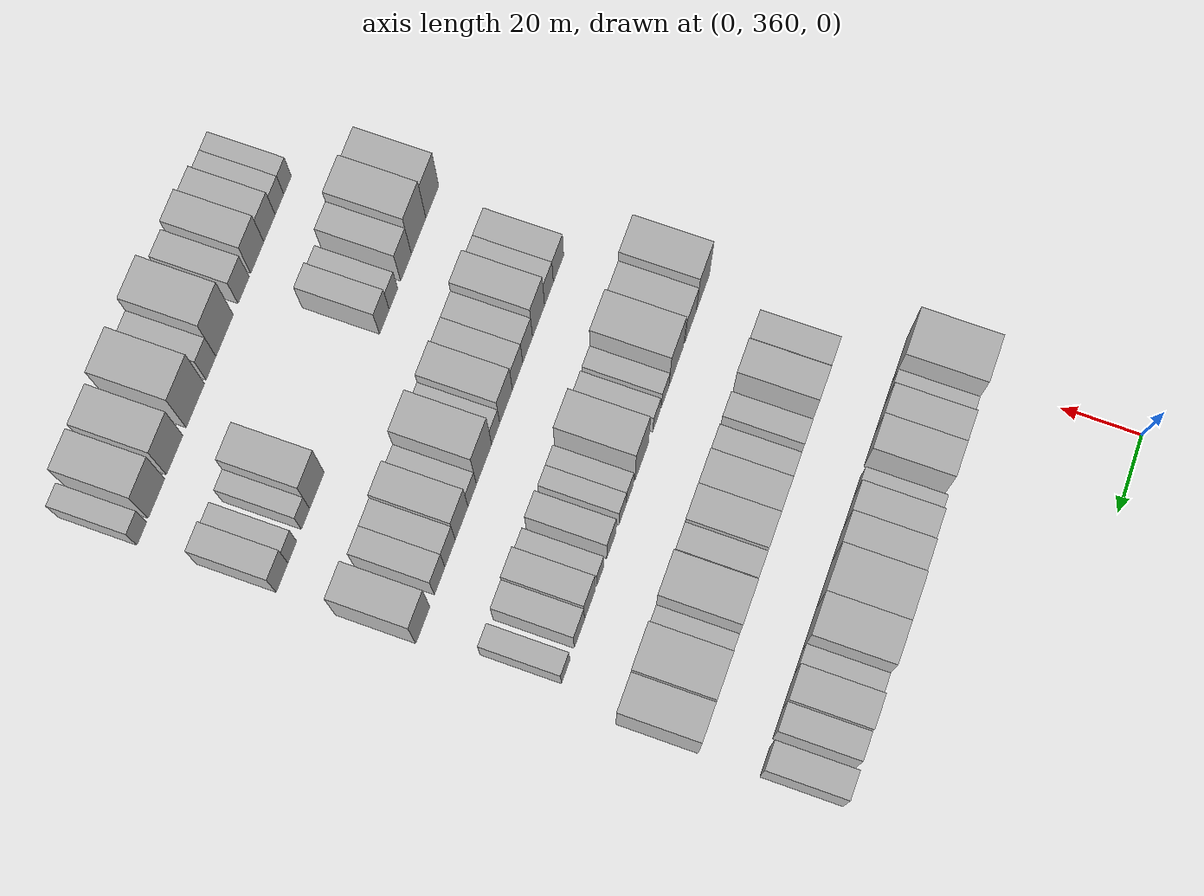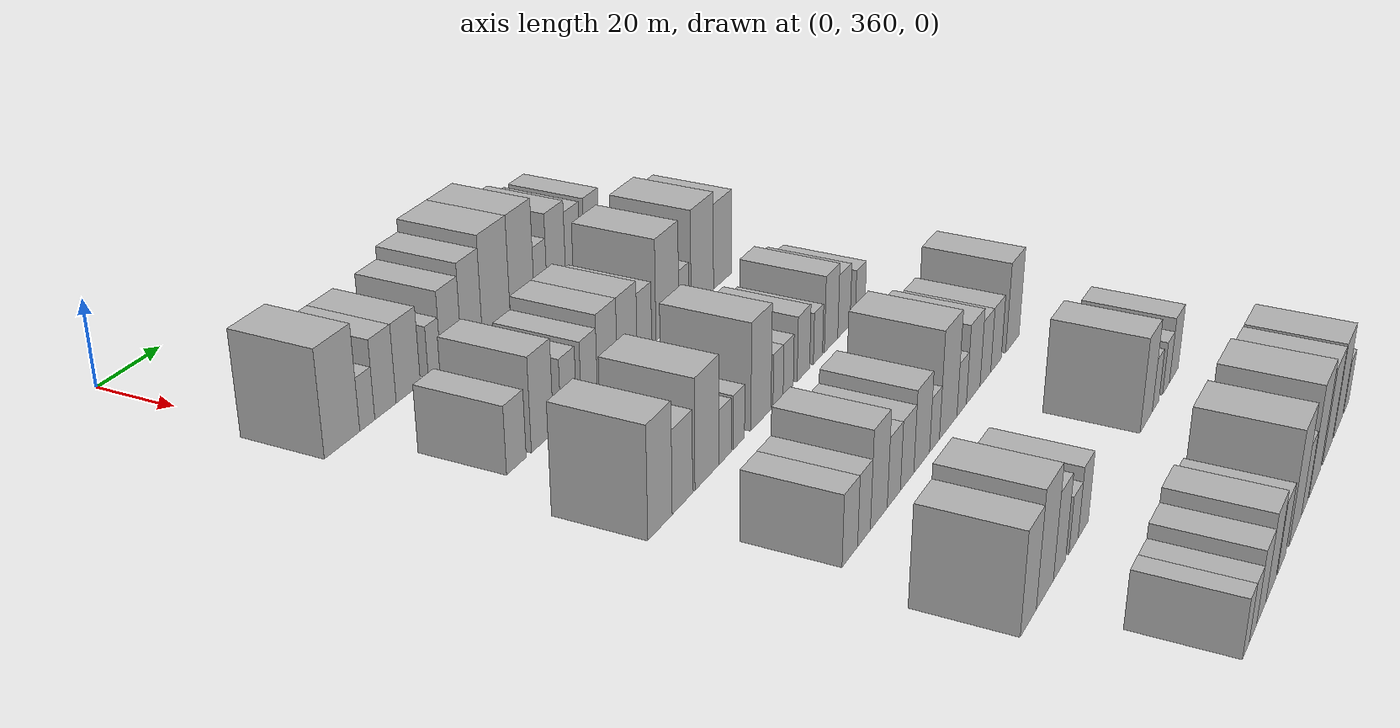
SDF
<sdf version="1.6">
 <world name="default">
  <model name="building_102">
   <static>1</static>
   <pose>50.0000 361.6857 0 0.000000 0.000000 0.000000</pose>
   <link name="link">
    <pose>0 0 12.00 0 0 0</pose>
    <collision name="collision"><geometry><box><size>20.0000 11.9867 24.0000</size></box></geometry></collision>
    <visual name="visual">
     <cast_shadows>0</cast_shadows>
     <geometry><box><size>20.0000 11.9867 24.0000</size></box></geometry>
     <material>
      <script>
       <uri>model://HANNAS_wall/materials/scripts</uri>
       <uri>model://HANNAS_wall/materials/textures</uri>
       <name>vrc/HANNAS_wall</name>
      </script>
     </material>
    </visual>
   </link>
  </model>
  <model name="building_103">
   <static>1</static>
   <pose>50.0000 370.3186 0 0.000000 0.000000 0.000000</pose>
   <link name="link">
    <pose>0 0 6.00 0 0 0</pose>
    <collision name="collision"><geometry><box><size>20.0000 5.2791 12.0000</size></box></geometry></collision>
    <visual name="visual">
     <cast_shadows>0</cast_shadows>
     <geometry><box><size>20.0000 5.2791 12.0000</size></box></geometry>
     <material>
      <script>
       <uri>model://HANNAS_wall/materials/scripts</uri>
       <uri>model://HANNAS_wall/materials/textures</uri>
       <name>vrc/HANNAS_wall</name>
      </script>
     </material>
    </visual>
   </link>
  </model>
  <model name="building_104">
   <static>1</static>
   <pose>50.0000 376.7874 0 0.000000 0.000000 0.000000</pose>
   <link name="link">
    <pose>0 0 9.00 0 0 0</pose>
    <collision name="collision"><geometry><box><size>20.0000 7.6583 18.0000</size></box></geometry></collision>
    <visual name="visual">
     <cast_shadows>0</cast_shadows>
     <geometry><box><size>20.0000 7.6583 18.0000</size></box></geometry>
     <material>
      <script>
       <uri>model://HANNAS_wall/materials/scripts</uri>
       <uri>model://HANNAS_wall/materials/textures</uri>
       <name>vrc/HANNAS_wall</name>
      </script>
     </material>
    </visual>
   </link>
  </model>
  <model name="building_105">
   <static>1</static>
   <pose>50.0000 385.1121 0 0.000000 0.000000 0.000000</pose>
   <link name="link">
    <pose>0 0 9.00 0 0 0</pose>
    <collision name="collision"><geometry><box><size>20.0000 8.9912 18.0000</size></box></geometry></collision>
    <visual name="visual">
     <cast_shadows>0</cast_shadows>
     <geometry><box><size>20.0000 8.9912 18.0000</size></box></geometry>
     <material>
      <script>
       <uri>model://HANNAS_wall/materials/scripts</uri>
       <uri>model://HANNAS_wall/materials/textures</uri>
       <name>vrc/HANNAS_wall</name>
      </script>
     </material>
    </visual>
   </link>
  </model>
  <model name="building_106">
   <static>1</static>
   <pose>50.0000 395.0356 0 0.000000 0.000000 0.000000</pose>
   <link name="link">
    <pose>0 0 6.00 0 0 0</pose>
    <collision name="collision"><geometry><box><size>20.0000 4.8556 12.0000</size></box></geometry></collision>
    <visual name="visual">
     <cast_shadows>0</cast_shadows>
     <geometry><box><size>20.0000 4.8556 12.0000</size></box></geometry>
     <material>
      <script>
       <uri>model://HANNAS_wall/materials/scripts</uri>
       <uri>model://HANNAS_wall/materials/textures</uri>
       <name>vrc/HANNAS_wall</name>
      </script>
     </material>
    </visual>
   </link>
  </model>
  <model name="building_107">
   <static>1</static>
   <pose>50.0000 401.5253 0 0.000000 0.000000 0.000000</pose>
   <link name="link">
    <pose>0 0 9.00 0 0 0</pose>
    <collision name="collision"><geometry><box><size>20.0000 8.1240 18.0000</size></box></geometry></collision>
    <visual name="visual">
     <cast_shadows>0</cast_shadows>
     <geometry><box><size>20.0000 8.1240 18.0000</size></box></geometry>
     <material>
      <script>
       <uri>model://HANNAS_wall/materials/scripts</uri>
       <uri>model://HANNAS_wall/materials/textures</uri>
       <name>vrc/HANNAS_wall</name>
      </script>
     </material>
    </visual>
   </link>
  </model>
  <model name="building_108">
   <static>1</static>
   <pose>50.0000 409.8244 0 0.000000 0.000000 0.000000</pose>
   <link name="link">
    <pose>0 0 10.50 0 0 0</pose>
    <collision name="collision"><geometry><box><size>20.0000 8.4741 21.0000</size></box></geometry></collision>
    <visual name="visual">
     <cast_shadows>0</cast_shadows>
     <geometry><box><size>20.0000 8.4741 21.0000</size></box></geometry>
     <material>
      <script>
       <uri>model://HANNAS_wall/materials/scripts</uri>
       <uri>model://HANNAS_wall/materials/textures</uri>
       <name>vrc/HANNAS_wall</name>
      </script>
     </material>
    </visual>
   </link>
  </model>
  <model name="building_109">
   <static>1</static>
   <pose>50.0000 419.9317 0 0.000000 0.000000 0.000000</pose>
   <link name="link">
    <pose>0 0 12.00 0 0 0</pose>
    <collision name="collision"><geometry><box><size>20.0000 11.7406 24.0000</size></box></geometry></collision>
    <visual name="visual">
     <cast_shadows>0</cast_shadows>
     <geometry><box><size>20.0000 11.7406 24.0000</size></box></geometry>
     <material>
      <script>
       <uri>model://HANNAS_wall/materials/scripts</uri>
       <uri>model://HANNAS_wall/materials/textures</uri>
       <name>vrc/HANNAS_wall</name>
      </script>
     </material>
    </visual>
   </link>
  </model>
  <model name="building_110">
   <static>1</static>
   <pose>50.0000 431.1006 0 0.000000 0.000000 0.000000</pose>
   <link name="link">
    <pose>0 0 12.00 0 0 0</pose>
    <collision name="collision"><geometry><box><size>20.0000 10.5972 24.0000</size></box></geometry></collision>
    <visual name="visual">
     <cast_shadows>0</cast_shadows>
     <geometry><box><size>20.0000 10.5972 24.0000</size></box></geometry>
     <material>
      <script>
       <uri>model://HANNAS_wall/materials/scripts</uri>
       <uri>model://HANNAS_wall/materials/textures</uri>
       <name>vrc/HANNAS_wall</name>
      </script>
     </material>
    </visual>
   </link>
  </model>
  <model name="building_111">
   <static>1</static>
   <pose>50.0000 439.2629 0 0.000000 0.000000 0.000000</pose>
   <link name="link">
    <pose>0 0 6.00 0 0 0</pose>
    <collision name="collision"><geometry><box><size>20.0000 5.7275 12.0000</size></box></geometry></collision>
    <visual name="visual">
     <cast_shadows>0</cast_shadows>
     <geometry><box><size>20.0000 5.7275 12.0000</size></box></geometry>
     <material>
      <script>
       <uri>model://HANNAS_wall/materials/scripts</uri>
       <uri>model://HANNAS_wall/materials/textures</uri>
       <name>vrc/HANNAS_wall</name>
      </script>
     </material>
    </visual>
   </link>
  </model>
  <model name="building_112">
   <static>1</static>
   <pose>50.0000 446.4455 0 0.000000 0.000000 0.000000</pose>
   <link name="link">
    <pose>0 0 9.00 0 0 0</pose>
    <collision name="collision"><geometry><box><size>20.0000 8.6378 18.0000</size></box></geometry></collision>
    <visual name="visual">
     <cast_shadows>0</cast_shadows>
     <geometry><box><size>20.0000 8.6378 18.0000</size></box></geometry>
     <material>
      <script>
       <uri>model://HANNAS_wall/materials/scripts</uri>
       <uri>model://HANNAS_wall/materials/textures</uri>
       <name>vrc/HANNAS_wall</name>
      </script>
     </material>
    </visual>
   </link>
  </model>
  <model name="building_113">
   <static>1</static>
   <pose>50.0000 454.3090 0 0.000000 0.000000 0.000000</pose>
   <link name="link">
    <pose>0 0 7.50 0 0 0</pose>
    <collision name="collision"><geometry><box><size>20.0000 7.0892 15.0000</size></box></geometry></collision>
    <visual name="visual">
     <cast_shadows>0</cast_shadows>
     <geometry><box><size>20.0000 7.0892 15.0000</size></box></geometry>
     <material>
      <script>
       <uri>model://HANNAS_wall/materials/scripts</uri>
       <uri>model://HANNAS_wall/materials/textures</uri>
       <name>vrc/HANNAS_wall</name>
      </script>
     </material>
    </visual>
   </link>
  </model>
  <model name="building_114">
   <static>1</static>
   <pose>50.0000 463.4557 0 0.000000 0.000000 0.000000</pose>
   <link name="link">
    <pose>0 0 7.50 0 0 0</pose>
    <collision name="collision"><geometry><box><size>20.0000 7.2040 15.0000</size></box></geometry></collision>
    <visual name="visual">
     <cast_shadows>0</cast_shadows>
     <geometry><box><size>20.0000 7.2040 15.0000</size></box></geometry>
     <material>
      <script>
       <uri>model://HANNAS_wall/materials/scripts</uri>
       <uri>model://HANNAS_wall/materials/textures</uri>
       <name>vrc/HANNAS_wall</name>
      </script>
     </material>
    </visual>
   </link>
  </model>
  <model name="building_235">
   <static>1</static>
   <pose>85.0000 369.3578 0 0.000000 0.000000 0.000000</pose>
   <link name="link">
    <pose>0 0 7.50 0 0 0</pose>
    <collision name="collision"><geometry><box><size>20.0000 7.3930 15.0000</size></box></geometry></collision>
    <visual name="visual">
     <cast_shadows>0</cast_shadows>
     <geometry><box><size>20.0000 7.3930 15.0000</size></box></geometry>
     <material>
      <script>
       <uri>model://HANNAS_wall/materials/scripts</uri>
       <uri>model://HANNAS_wall/materials/textures</uri>
       <name>vrc/HANNAS_wall</name>
      </script>
     </material>
    </visual>
   </link>
  </model>
  <model name="building_236">
   <static>1</static>
   <pose>85.0000 379.4162 0 0.000000 0.000000 0.000000</pose>
   <link name="link">
    <pose>0 0 10.50 0 0 0</pose>
    <collision name="collision"><geometry><box><size>20.0000 8.7239 21.0000</size></box></geometry></collision>
    <visual name="visual">
     <cast_shadows>0</cast_shadows>
     <geometry><box><size>20.0000 8.7239 21.0000</size></box></geometry>
     <material>
      <script>
       <uri>model://HANNAS_wall/materials/scripts</uri>
       <uri>model://HANNAS_wall/materials/textures</uri>
       <name>vrc/HANNAS_wall</name>
      </script>
     </material>
    </visual>
   </link>
  </model>
  <model name="building_237">
   <static>1</static>
   <pose>85.0000 389.9476 0 0.000000 0.000000 0.000000</pose>
   <link name="link">
    <pose>0 0 7.50 0 0 0</pose>
    <collision name="collision"><geometry><box><size>20.0000 6.3389 15.0000</size></box></geometry></collision>
    <visual name="visual">
     <cast_shadows>0</cast_shadows>
     <geometry><box><size>20.0000 6.3389 15.0000</size></box></geometry>
     <material>
      <script>
       <uri>model://HANNAS_wall/materials/scripts</uri>
       <uri>model://HANNAS_wall/materials/textures</uri>
       <name>vrc/HANNAS_wall</name>
      </script>
     </material>
    </visual>
   </link>
  </model>
  <model name="building_238">
   <static>1</static>
   <pose>85.0000 398.5433 0 0.000000 0.000000 0.000000</pose>
   <link name="link">
    <pose>0 0 7.50 0 0 0</pose>
    <collision name="collision"><geometry><box><size>20.0000 6.8524 15.0000</size></box></geometry></collision>
    <visual name="visual">
     <cast_shadows>0</cast_shadows>
     <geometry><box><size>20.0000 6.8524 15.0000</size></box></geometry>
     <material>
      <script>
       <uri>model://HANNAS_wall/materials/scripts</uri>
       <uri>model://HANNAS_wall/materials/textures</uri>
       <name>vrc/HANNAS_wall</name>
      </script>
     </material>
    </visual>
   </link>
  </model>
  <model name="building_239">
   <static>1</static>
   <pose>85.0000 406.3175 0 0.000000 0.000000 0.000000</pose>
   <link name="link">
    <pose>0 0 9.00 0 0 0</pose>
    <collision name="collision"><geometry><box><size>20.0000 8.6960 18.0000</size></box></geometry></collision>
    <visual name="visual">
     <cast_shadows>0</cast_shadows>
     <geometry><box><size>20.0000 8.6960 18.0000</size></box></geometry>
     <material>
      <script>
       <uri>model://HANNAS_wall/materials/scripts</uri>
       <uri>model://HANNAS_wall/materials/textures</uri>
       <name>vrc/HANNAS_wall</name>
      </script>
     </material>
    </visual>
   </link>
  </model>
  <model name="building_240">
   <static>1</static>
   <pose>85.0000 415.1544 0 0.000000 0.000000 0.000000</pose>
   <link name="link">
    <pose>0 0 9.00 0 0 0</pose>
    <collision name="collision"><geometry><box><size>20.0000 8.9778 18.0000</size></box></geometry></collision>
    <visual name="visual">
     <cast_shadows>0</cast_shadows>
     <geometry><box><size>20.0000 8.9778 18.0000</size></box></geometry>
     <material>
      <script>
       <uri>model://HANNAS_wall/materials/scripts</uri>
       <uri>model://HANNAS_wall/materials/textures</uri>
       <name>vrc/HANNAS_wall</name>
      </script>
     </material>
    </visual>
   </link>
  </model>
  <model name="building_241">
   <static>1</static>
   <pose>85.0000 423.0074 0 0.000000 0.000000 0.000000</pose>
   <link name="link">
    <pose>0 0 7.50 0 0 0</pose>
    <collision name="collision"><geometry><box><size>20.0000 6.7283 15.0000</size></box></geometry></collision>
    <visual name="visual">
     <cast_shadows>0</cast_shadows>
     <geometry><box><size>20.0000 6.7283 15.0000</size></box></geometry>
     <material>
      <script>
       <uri>model://HANNAS_wall/materials/scripts</uri>
       <uri>model://HANNAS_wall/materials/textures</uri>
       <name>vrc/HANNAS_wall</name>
      </script>
     </material>
    </visual>
   </link>
  </model>
  <model name="building_242">
   <static>1</static>
   <pose>85.0000 433.8915 0 0.000000 0.000000 0.000000</pose>
   <link name="link">
    <pose>0 0 12.00 0 0 0</pose>
    <collision name="collision"><geometry><box><size>20.0000 11.0398 24.0000</size></box></geometry></collision>
    <visual name="visual">
     <cast_shadows>0</cast_shadows>
     <geometry><box><size>20.0000 11.0398 24.0000</size></box></geometry>
     <material>
      <script>
       <uri>model://HANNAS_wall/materials/scripts</uri>
       <uri>model://HANNAS_wall/materials/textures</uri>
       <name>vrc/HANNAS_wall</name>
      </script>
     </material>
    </visual>
   </link>
  </model>
  <model name="building_243">
   <static>1</static>
   <pose>85.0000 441.9706 0 0.000000 0.000000 0.000000</pose>
   <link name="link">
    <pose>0 0 6.00 0 0 0</pose>
    <collision name="collision"><geometry><box><size>20.0000 5.1183 12.0000</size></box></geometry></collision>
    <visual name="visual">
     <cast_shadows>0</cast_shadows>
     <geometry><box><size>20.0000 5.1183 12.0000</size></box></geometry>
     <material>
      <script>
       <uri>model://HANNAS_wall/materials/scripts</uri>
       <uri>model://HANNAS_wall/materials/textures</uri>
       <name>vrc/HANNAS_wall</name>
      </script>
     </material>
    </visual>
   </link>
  </model>
  <model name="building_244">
   <static>1</static>
   <pose>85.0000 451.3137 0 0.000000 0.000000 0.000000</pose>
   <link name="link">
    <pose>0 0 12.00 0 0 0</pose>
    <collision name="collision"><geometry><box><size>20.0000 11.5679 24.0000</size></box></geometry></collision>
    <visual name="visual">
     <cast_shadows>0</cast_shadows>
     <geometry><box><size>20.0000 11.5679 24.0000</size></box></geometry>
     <material>
      <script>
       <uri>model://HANNAS_wall/materials/scripts</uri>
       <uri>model://HANNAS_wall/materials/textures</uri>
       <name>vrc/HANNAS_wall</name>
      </script>
     </material>
    </visual>
   </link>
  </model>
  <model name="building_245">
   <static>1</static>
   <pose>85.0000 461.9260 0 0.000000 0.000000 0.000000</pose>
   <link name="link">
    <pose>0 0 10.50 0 0 0</pose>
    <collision name="collision"><geometry><box><size>20.0000 9.6566 21.0000</size></box></geometry></collision>
    <visual name="visual">
     <cast_shadows>0</cast_shadows>
     <geometry><box><size>20.0000 9.6566 21.0000</size></box></geometry>
     <material>
      <script>
       <uri>model://HANNAS_wall/materials/scripts</uri>
       <uri>model://HANNAS_wall/materials/textures</uri>
       <name>vrc/HANNAS_wall</name>
      </script>
     </material>
    </visual>
   </link>
  </model>
  <model name="building_355">
   <static>1</static>
   <pose>120.0000 361.5621 0 0.000000 0.000000 0.000000</pose>
   <link name="link">
    <pose>0 0 12.00 0 0 0</pose>
    <collision name="collision"><geometry><box><size>20.0000 9.8209 24.0000</size></box></geometry></collision>
    <visual name="visual">
     <cast_shadows>0</cast_shadows>
     <geometry><box><size>20.0000 9.8209 24.0000</size></box></geometry>
     <material>
      <script>
       <uri>model://HANNAS_wall/materials/scripts</uri>
       <uri>model://HANNAS_wall/materials/textures</uri>
       <name>vrc/HANNAS_wall</name>
      </script>
     </material>
    </visual>
   </link>
  </model>
  <model name="building_356">
   <static>1</static>
   <pose>120.0000 370.7505 0 0.000000 0.000000 0.000000</pose>
   <link name="link">
    <pose>0 0 9.00 0 0 0</pose>
    <collision name="collision"><geometry><box><size>20.0000 8.5560 18.0000</size></box></geometry></collision>
    <visual name="visual">
     <cast_shadows>0</cast_shadows>
     <geometry><box><size>20.0000 8.5560 18.0000</size></box></geometry>
     <material>
      <script>
       <uri>model://HANNAS_wall/materials/scripts</uri>
       <uri>model://HANNAS_wall/materials/textures</uri>
       <name>vrc/HANNAS_wall</name>
      </script>
     </material>
    </visual>
   </link>
  </model>
  <model name="building_357">
   <static>1</static>
   <pose>120.0000 381.3107 0 0.000000 0.000000 0.000000</pose>
   <link name="link">
    <pose>0 0 12.00 0 0 0</pose>
    <collision name="collision"><geometry><box><size>20.0000 10.5643 24.0000</size></box></geometry></collision>
    <visual name="visual">
     <cast_shadows>0</cast_shadows>
     <geometry><box><size>20.0000 10.5643 24.0000</size></box></geometry>
     <material>
      <script>
       <uri>model://HANNAS_wall/materials/scripts</uri>
       <uri>model://HANNAS_wall/materials/textures</uri>
       <name>vrc/HANNAS_wall</name>
      </script>
     </material>
    </visual>
   </link>
  </model>
  <model name="building_358">
   <static>1</static>
   <pose>120.0000 389.3244 0 0.000000 0.000000 0.000000</pose>
   <link name="link">
    <pose>0 0 6.00 0 0 0</pose>
    <collision name="collision"><geometry><box><size>20.0000 5.4633 12.0000</size></box></geometry></collision>
    <visual name="visual">
     <cast_shadows>0</cast_shadows>
     <geometry><box><size>20.0000 5.4633 12.0000</size></box></geometry>
     <material>
      <script>
       <uri>model://HANNAS_wall/materials/scripts</uri>
       <uri>model://HANNAS_wall/materials/textures</uri>
       <name>vrc/HANNAS_wall</name>
      </script>
     </material>
    </visual>
   </link>
  </model>
  <model name="building_359">
   <static>1</static>
   <pose>120.0000 395.6555 0 0.000000 0.000000 0.000000</pose>
   <link name="link">
    <pose>0 0 6.00 0 0 0</pose>
    <collision name="collision"><geometry><box><size>20.0000 5.1988 12.0000</size></box></geometry></collision>
    <visual name="visual">
     <cast_shadows>0</cast_shadows>
     <geometry><box><size>20.0000 5.1988 12.0000</size></box></geometry>
     <material>
      <script>
       <uri>model://HANNAS_wall/materials/scripts</uri>
       <uri>model://HANNAS_wall/materials/textures</uri>
       <name>vrc/HANNAS_wall</name>
      </script>
     </material>
    </visual>
   </link>
  </model>
  <model name="building_360">
   <static>1</static>
   <pose>120.0000 406.1426 0 0.000000 0.000000 0.000000</pose>
   <link name="link">
    <pose>0 0 12.00 0 0 0</pose>
    <collision name="collision"><geometry><box><size>20.0000 9.7755 24.0000</size></box></geometry></collision>
    <visual name="visual">
     <cast_shadows>0</cast_shadows>
     <geometry><box><size>20.0000 9.7755 24.0000</size></box></geometry>
     <material>
      <script>
       <uri>model://HANNAS_wall/materials/scripts</uri>
       <uri>model://HANNAS_wall/materials/textures</uri>
       <name>vrc/HANNAS_wall</name>
      </script>
     </material>
    </visual>
   </link>
  </model>
  <model name="building_361">
   <static>1</static>
   <pose>120.0000 414.5683 0 0.000000 0.000000 0.000000</pose>
   <link name="link">
    <pose>0 0 6.00 0 0 0</pose>
    <collision name="collision"><geometry><box><size>20.0000 5.0758 12.0000</size></box></geometry></collision>
    <visual name="visual">
     <cast_shadows>0</cast_shadows>
     <geometry><box><size>20.0000 5.0758 12.0000</size></box></geometry>
     <material>
      <script>
       <uri>model://HANNAS_wall/materials/scripts</uri>
       <uri>model://HANNAS_wall/materials/textures</uri>
       <name>vrc/HANNAS_wall</name>
      </script>
     </material>
    </visual>
   </link>
  </model>
  <model name="building_362">
   <static>1</static>
   <pose>120.0000 419.7102 0 0.000000 0.000000 0.000000</pose>
   <link name="link">
    <pose>0 0 6.00 0 0 0</pose>
    <collision name="collision"><geometry><box><size>20.0000 5.2080 12.0000</size></box></geometry></collision>
    <visual name="visual">
     <cast_shadows>0</cast_shadows>
     <geometry><box><size>20.0000 5.2080 12.0000</size></box></geometry>
     <material>
      <script>
       <uri>model://HANNAS_wall/materials/scripts</uri>
       <uri>model://HANNAS_wall/materials/textures</uri>
       <name>vrc/HANNAS_wall</name>
      </script>
     </material>
    </visual>
   </link>
  </model>
  <model name="building_363">
   <static>1</static>
   <pose>120.0000 427.6087 0 0.000000 0.000000 0.000000</pose>
   <link name="link">
    <pose>0 0 7.50 0 0 0</pose>
    <collision name="collision"><geometry><box><size>20.0000 6.5891 15.0000</size></box></geometry></collision>
    <visual name="visual">
     <cast_shadows>0</cast_shadows>
     <geometry><box><size>20.0000 6.5891 15.0000</size></box></geometry>
     <material>
      <script>
       <uri>model://HANNAS_wall/materials/scripts</uri>
       <uri>model://HANNAS_wall/materials/textures</uri>
       <name>vrc/HANNAS_wall</name>
      </script>
     </material>
    </visual>
   </link>
  </model>
  <model name="building_364">
   <static>1</static>
   <pose>120.0000 435.3853 0 0.000000 0.000000 0.000000</pose>
   <link name="link">
    <pose>0 0 6.00 0 0 0</pose>
    <collision name="collision"><geometry><box><size>20.0000 4.9641 12.0000</size></box></geometry></collision>
    <visual name="visual">
     <cast_shadows>0</cast_shadows>
     <geometry><box><size>20.0000 4.9641 12.0000</size></box></geometry>
     <material>
      <script>
       <uri>model://HANNAS_wall/materials/scripts</uri>
       <uri>model://HANNAS_wall/materials/textures</uri>
       <name>vrc/HANNAS_wall</name>
      </script>
     </material>
    </visual>
   </link>
  </model>
  <model name="building_365">
   <static>1</static>
   <pose>120.0000 442.6104 0 0.000000 0.000000 0.000000</pose>
   <link name="link">
    <pose>0 0 9.00 0 0 0</pose>
    <collision name="collision"><geometry><box><size>20.0000 7.4861 18.0000</size></box></geometry></collision>
    <visual name="visual">
     <cast_shadows>0</cast_shadows>
     <geometry><box><size>20.0000 7.4861 18.0000</size></box></geometry>
     <material>
      <script>
       <uri>model://HANNAS_wall/materials/scripts</uri>
       <uri>model://HANNAS_wall/materials/textures</uri>
       <name>vrc/HANNAS_wall</name>
      </script>
     </material>
    </visual>
   </link>
  </model>
  <model name="building_366">
   <static>1</static>
   <pose>120.0000 449.8701 0 0.000000 0.000000 0.000000</pose>
   <link name="link">
    <pose>0 0 7.50 0 0 0</pose>
    <collision name="collision"><geometry><box><size>20.0000 7.0333 15.0000</size></box></geometry></collision>
    <visual name="visual">
     <cast_shadows>0</cast_shadows>
     <geometry><box><size>20.0000 7.0333 15.0000</size></box></geometry>
     <material>
      <script>
       <uri>model://HANNAS_wall/materials/scripts</uri>
       <uri>model://HANNAS_wall/materials/textures</uri>
       <name>vrc/HANNAS_wall</name>
      </script>
     </material>
    </visual>
   </link>
  </model>
  <model name="building_367">
   <static>1</static>
   <pose>120.0000 459.2617 0 0.000000 0.000000 0.000000</pose>
   <link name="link">
    <pose>0 0 6.00 0 0 0</pose>
    <collision name="collision"><geometry><box><size>20.0000 5.7498 12.0000</size></box></geometry></collision>
    <visual name="visual">
     <cast_shadows>0</cast_shadows>
     <geometry><box><size>20.0000 5.7498 12.0000</size></box></geometry>
     <material>
      <script>
       <uri>model://HANNAS_wall/materials/scripts</uri>
       <uri>model://HANNAS_wall/materials/textures</uri>
       <name>vrc/HANNAS_wall</name>
      </script>
     </material>
    </visual>
   </link>
  </model>
  <model name="building_487">
   <static>1</static>
   <pose>155.0000 367.3672 0 0.000000 0.000000 0.000000</pose>
   <link name="link">
    <pose>0 0 7.50 0 0 0</pose>
    <collision name="collision"><geometry><box><size>20.0000 7.3351 15.0000</size></box></geometry></collision>
    <visual name="visual">
     <cast_shadows>0</cast_shadows>
     <geometry><box><size>20.0000 7.3351 15.0000</size></box></geometry>
     <material>
      <script>
       <uri>model://HANNAS_wall/materials/scripts</uri>
       <uri>model://HANNAS_wall/materials/textures</uri>
       <name>vrc/HANNAS_wall</name>
      </script>
     </material>
    </visual>
   </link>
  </model>
  <model name="building_488">
   <static>1</static>
   <pose>155.0000 374.1367 0 0.000000 0.000000 0.000000</pose>
   <link name="link">
    <pose>0 0 7.50 0 0 0</pose>
    <collision name="collision"><geometry><box><size>20.0000 6.2040 15.0000</size></box></geometry></collision>
    <visual name="visual">
     <cast_shadows>0</cast_shadows>
     <geometry><box><size>20.0000 6.2040 15.0000</size></box></geometry>
     <material>
      <script>
       <uri>model://HANNAS_wall/materials/scripts</uri>
       <uri>model://HANNAS_wall/materials/textures</uri>
       <name>vrc/HANNAS_wall</name>
      </script>
     </material>
    </visual>
   </link>
  </model>
  <model name="building_489">
   <static>1</static>
   <pose>155.0000 381.4850 0 0.000000 0.000000 0.000000</pose>
   <link name="link">
    <pose>0 0 10.50 0 0 0</pose>
    <collision name="collision"><geometry><box><size>20.0000 8.4925 21.0000</size></box></geometry></collision>
    <visual name="visual">
     <cast_shadows>0</cast_shadows>
     <geometry><box><size>20.0000 8.4925 21.0000</size></box></geometry>
     <material>
      <script>
       <uri>model://HANNAS_wall/materials/scripts</uri>
       <uri>model://HANNAS_wall/materials/textures</uri>
       <name>vrc/HANNAS_wall</name>
      </script>
     </material>
    </visual>
   </link>
  </model>
  <model name="building_490">
   <static>1</static>
   <pose>155.0000 389.1400 0 0.000000 0.000000 0.000000</pose>
   <link name="link">
    <pose>0 0 7.50 0 0 0</pose>
    <collision name="collision"><geometry><box><size>20.0000 6.8176 15.0000</size></box></geometry></collision>
    <visual name="visual">
     <cast_shadows>0</cast_shadows>
     <geometry><box><size>20.0000 6.8176 15.0000</size></box></geometry>
     <material>
      <script>
       <uri>model://HANNAS_wall/materials/scripts</uri>
       <uri>model://HANNAS_wall/materials/textures</uri>
       <name>vrc/HANNAS_wall</name>
      </script>
     </material>
    </visual>
   </link>
  </model>
  <model name="building_491">
   <static>1</static>
   <pose>155.0000 396.1377 0 0.000000 0.000000 0.000000</pose>
   <link name="link">
    <pose>0 0 7.50 0 0 0</pose>
    <collision name="collision"><geometry><box><size>20.0000 7.1777 15.0000</size></box></geometry></collision>
    <visual name="visual">
     <cast_shadows>0</cast_shadows>
     <geometry><box><size>20.0000 7.1777 15.0000</size></box></geometry>
     <material>
      <script>
       <uri>model://HANNAS_wall/materials/scripts</uri>
       <uri>model://HANNAS_wall/materials/textures</uri>
       <name>vrc/HANNAS_wall</name>
      </script>
     </material>
    </visual>
   </link>
  </model>
  <model name="building_492">
   <static>1</static>
   <pose>155.0000 404.0935 0 0.000000 0.000000 0.000000</pose>
   <link name="link">
    <pose>0 0 9.00 0 0 0</pose>
    <collision name="collision"><geometry><box><size>20.0000 8.7339 18.0000</size></box></geometry></collision>
    <visual name="visual">
     <cast_shadows>0</cast_shadows>
     <geometry><box><size>20.0000 8.7339 18.0000</size></box></geometry>
     <material>
      <script>
       <uri>model://HANNAS_wall/materials/scripts</uri>
       <uri>model://HANNAS_wall/materials/textures</uri>
       <name>vrc/HANNAS_wall</name>
      </script>
     </material>
    </visual>
   </link>
  </model>
  <model name="building_493">
   <static>1</static>
   <pose>155.0000 411.2604 0 0.000000 0.000000 0.000000</pose>
   <link name="link">
    <pose>0 0 6.00 0 0 0</pose>
    <collision name="collision"><geometry><box><size>20.0000 5.6000 12.0000</size></box></geometry></collision>
    <visual name="visual">
     <cast_shadows>0</cast_shadows>
     <geometry><box><size>20.0000 5.6000 12.0000</size></box></geometry>
     <material>
      <script>
       <uri>model://HANNAS_wall/materials/scripts</uri>
       <uri>model://HANNAS_wall/materials/textures</uri>
       <name>vrc/HANNAS_wall</name>
      </script>
     </material>
    </visual>
   </link>
  </model>
  <model name="building_494">
   <static>1</static>
   <pose>155.0000 419.2189 0 0.000000 0.000000 0.000000</pose>
   <link name="link">
    <pose>0 0 12.00 0 0 0</pose>
    <collision name="collision"><geometry><box><size>20.0000 10.3170 24.0000</size></box></geometry></collision>
    <visual name="visual">
     <cast_shadows>0</cast_shadows>
     <geometry><box><size>20.0000 10.3170 24.0000</size></box></geometry>
     <material>
      <script>
       <uri>model://HANNAS_wall/materials/scripts</uri>
       <uri>model://HANNAS_wall/materials/textures</uri>
       <name>vrc/HANNAS_wall</name>
      </script>
     </material>
    </visual>
   </link>
  </model>
  <model name="building_495">
   <static>1</static>
   <pose>155.0000 427.2495 0 0.000000 0.000000 0.000000</pose>
   <link name="link">
    <pose>0 0 6.00 0 0 0</pose>
    <collision name="collision"><geometry><box><size>20.0000 5.7441 12.0000</size></box></geometry></collision>
    <visual name="visual">
     <cast_shadows>0</cast_shadows>
     <geometry><box><size>20.0000 5.7441 12.0000</size></box></geometry>
     <material>
      <script>
       <uri>model://HANNAS_wall/materials/scripts</uri>
       <uri>model://HANNAS_wall/materials/textures</uri>
       <name>vrc/HANNAS_wall</name>
      </script>
     </material>
    </visual>
   </link>
  </model>
  <model name="building_496">
   <static>1</static>
   <pose>155.0000 434.3770 0 0.000000 0.000000 0.000000</pose>
   <link name="link">
    <pose>0 0 9.00 0 0 0</pose>
    <collision name="collision"><geometry><box><size>20.0000 8.5109 18.0000</size></box></geometry></collision>
    <visual name="visual">
     <cast_shadows>0</cast_shadows>
     <geometry><box><size>20.0000 8.5109 18.0000</size></box></geometry>
     <material>
      <script>
       <uri>model://HANNAS_wall/materials/scripts</uri>
       <uri>model://HANNAS_wall/materials/textures</uri>
       <name>vrc/HANNAS_wall</name>
      </script>
     </material>
    </visual>
   </link>
  </model>
  <model name="building_497">
   <static>1</static>
   <pose>155.0000 442.0715 0 0.000000 0.000000 0.000000</pose>
   <link name="link">
    <pose>0 0 7.50 0 0 0</pose>
    <collision name="collision"><geometry><box><size>20.0000 6.8783 15.0000</size></box></geometry></collision>
    <visual name="visual">
     <cast_shadows>0</cast_shadows>
     <geometry><box><size>20.0000 6.8783 15.0000</size></box></geometry>
     <material>
      <script>
       <uri>model://HANNAS_wall/materials/scripts</uri>
       <uri>model://HANNAS_wall/materials/textures</uri>
       <name>vrc/HANNAS_wall</name>
      </script>
     </material>
    </visual>
   </link>
  </model>
  <model name="building_498">
   <static>1</static>
   <pose>155.0000 449.0062 0 0.000000 0.000000 0.000000</pose>
   <link name="link">
    <pose>0 0 7.50 0 0 0</pose>
    <collision name="collision"><geometry><box><size>20.0000 6.9911 15.0000</size></box></geometry></collision>
    <visual name="visual">
     <cast_shadows>0</cast_shadows>
     <geometry><box><size>20.0000 6.9911 15.0000</size></box></geometry>
     <material>
      <script>
       <uri>model://HANNAS_wall/materials/scripts</uri>
       <uri>model://HANNAS_wall/materials/textures</uri>
       <name>vrc/HANNAS_wall</name>
      </script>
     </material>
    </visual>
   </link>
  </model>
  <model name="building_499">
   <static>1</static>
   <pose>155.0000 460.0969 0 0.000000 0.000000 0.000000</pose>
   <link name="link">
    <pose>0 0 10.50 0 0 0</pose>
    <collision name="collision"><geometry><box><size>20.0000 9.1903 21.0000</size></box></geometry></collision>
    <visual name="visual">
     <cast_shadows>0</cast_shadows>
     <geometry><box><size>20.0000 9.1903 21.0000</size></box></geometry>
     <material>
      <script>
       <uri>model://HANNAS_wall/materials/scripts</uri>
       <uri>model://HANNAS_wall/materials/textures</uri>
       <name>vrc/HANNAS_wall</name>
      </script>
     </material>
    </visual>
   </link>
  </model>
  <model name="building_615">
   <static>1</static>
   <pose>190.0000 361.3978 0 0.000000 0.000000 0.000000</pose>
   <link name="link">
    <pose>0 0 10.50 0 0 0</pose>
    <collision name="collision"><geometry><box><size>20.0000 8.8496 21.0000</size></box></geometry></collision>
    <visual name="visual">
     <cast_shadows>0</cast_shadows>
     <geometry><box><size>20.0000 8.8496 21.0000</size></box></geometry>
     <material>
      <script>
       <uri>model://HANNAS_wall/materials/scripts</uri>
       <uri>model://HANNAS_wall/materials/textures</uri>
       <name>vrc/HANNAS_wall</name>
      </script>
     </material>
    </visual>
   </link>
  </model>
  <model name="building_616">
   <static>1</static>
   <pose>190.0000 370.7754 0 0.000000 0.000000 0.000000</pose>
   <link name="link">
    <pose>0 0 12.00 0 0 0</pose>
    <collision name="collision"><geometry><box><size>20.0000 9.9056 24.0000</size></box></geometry></collision>
    <visual name="visual">
     <cast_shadows>0</cast_shadows>
     <geometry><box><size>20.0000 9.9056 24.0000</size></box></geometry>
     <material>
      <script>
       <uri>model://HANNAS_wall/materials/scripts</uri>
       <uri>model://HANNAS_wall/materials/textures</uri>
       <name>vrc/HANNAS_wall</name>
      </script>
     </material>
    </visual>
   </link>
  </model>
  <model name="building_617">
   <static>1</static>
   <pose>190.0000 379.3933 0 0.000000 0.000000 0.000000</pose>
   <link name="link">
    <pose>0 0 9.00 0 0 0</pose>
    <collision name="collision"><geometry><box><size>20.0000 7.3301 18.0000</size></box></geometry></collision>
    <visual name="visual">
     <cast_shadows>0</cast_shadows>
     <geometry><box><size>20.0000 7.3301 18.0000</size></box></geometry>
     <material>
      <script>
       <uri>model://HANNAS_wall/materials/scripts</uri>
       <uri>model://HANNAS_wall/materials/textures</uri>
       <name>vrc/HANNAS_wall</name>
      </script>
     </material>
    </visual>
   </link>
  </model>
  <model name="building_618">
   <static>1</static>
   <pose>190.0000 387.9150 0 0.000000 0.000000 0.000000</pose>
   <link name="link">
    <pose>0 0 6.00 0 0 0</pose>
    <collision name="collision"><geometry><box><size>20.0000 5.7133 12.0000</size></box></geometry></collision>
    <visual name="visual">
     <cast_shadows>0</cast_shadows>
     <geometry><box><size>20.0000 5.7133 12.0000</size></box></geometry>
     <material>
      <script>
       <uri>model://HANNAS_wall/materials/scripts</uri>
       <uri>model://HANNAS_wall/materials/textures</uri>
       <name>vrc/HANNAS_wall</name>
      </script>
     </material>
    </visual>
   </link>
  </model>
  <model name="building_619">
   <static>1</static>
   <pose>190.0000 394.0546 0 0.000000 0.000000 0.000000</pose>
   <link name="link">
    <pose>0 0 7.50 0 0 0</pose>
    <collision name="collision"><geometry><box><size>20.0000 6.5660 15.0000</size></box></geometry></collision>
    <visual name="visual">
     <cast_shadows>0</cast_shadows>
     <geometry><box><size>20.0000 6.5660 15.0000</size></box></geometry>
     <material>
      <script>
       <uri>model://HANNAS_wall/materials/scripts</uri>
       <uri>model://HANNAS_wall/materials/textures</uri>
       <name>vrc/HANNAS_wall</name>
      </script>
     </material>
    </visual>
   </link>
  </model>
  <model name="building_620">
   <static>1</static>
   <pose>190.0000 438.4104 0 0.000000 0.000000 0.000000</pose>
   <link name="link">
    <pose>0 0 10.50 0 0 0</pose>
    <collision name="collision"><geometry><box><size>20.0000 9.3819 21.0000</size></box></geometry></collision>
    <visual name="visual">
     <cast_shadows>0</cast_shadows>
     <geometry><box><size>20.0000 9.3819 21.0000</size></box></geometry>
     <material>
      <script>
       <uri>model://HANNAS_wall/materials/scripts</uri>
       <uri>model://HANNAS_wall/materials/textures</uri>
       <name>vrc/HANNAS_wall</name>
      </script>
     </material>
    </visual>
   </link>
  </model>
  <model name="building_621">
   <static>1</static>
   <pose>190.0000 445.7424 0 0.000000 0.000000 0.000000</pose>
   <link name="link">
    <pose>0 0 6.00 0 0 0</pose>
    <collision name="collision"><geometry><box><size>20.0000 5.2821 12.0000</size></box></geometry></collision>
    <visual name="visual">
     <cast_shadows>0</cast_shadows>
     <geometry><box><size>20.0000 5.2821 12.0000</size></box></geometry>
     <material>
      <script>
       <uri>model://HANNAS_wall/materials/scripts</uri>
       <uri>model://HANNAS_wall/materials/textures</uri>
       <name>vrc/HANNAS_wall</name>
      </script>
     </material>
    </visual>
   </link>
  </model>
  <model name="building_622">
   <static>1</static>
   <pose>190.0000 454.1607 0 0.000000 0.000000 0.000000</pose>
   <link name="link">
    <pose>0 0 6.00 0 0 0</pose>
    <collision name="collision"><geometry><box><size>20.0000 5.5545 12.0000</size></box></geometry></collision>
    <visual name="visual">
     <cast_shadows>0</cast_shadows>
     <geometry><box><size>20.0000 5.5545 12.0000</size></box></geometry>
     <material>
      <script>
       <uri>model://HANNAS_wall/materials/scripts</uri>
       <uri>model://HANNAS_wall/materials/textures</uri>
       <name>vrc/HANNAS_wall</name>
      </script>
     </material>
    </visual>
   </link>
  </model>
  <model name="building_623">
   <static>1</static>
   <pose>190.0000 460.6378 0 0.000000 0.000000 0.000000</pose>
   <link name="link">
    <pose>0 0 7.50 0 0 0</pose>
    <collision name="collision"><geometry><box><size>20.0000 7.3996 15.0000</size></box></geometry></collision>
    <visual name="visual">
     <cast_shadows>0</cast_shadows>
     <geometry><box><size>20.0000 7.3996 15.0000</size></box></geometry>
     <material>
      <script>
       <uri>model://HANNAS_wall/materials/scripts</uri>
       <uri>model://HANNAS_wall/materials/textures</uri>
       <name>vrc/HANNAS_wall</name>
      </script>
     </material>
    </visual>
   </link>
  </model>
  <model name="building_741">
   <static>1</static>
   <pose>225.0000 369.2158 0 0.000000 0.000000 0.000000</pose>
   <link name="link">
    <pose>0 0 6.00 0 0 0</pose>
    <collision name="collision"><geometry><box><size>20.0000 5.0333 12.0000</size></box></geometry></collision>
    <visual name="visual">
     <cast_shadows>0</cast_shadows>
     <geometry><box><size>20.0000 5.0333 12.0000</size></box></geometry>
     <material>
      <script>
       <uri>model://HANNAS_wall/materials/scripts</uri>
       <uri>model://HANNAS_wall/materials/textures</uri>
       <name>vrc/HANNAS_wall</name>
      </script>
     </material>
    </visual>
   </link>
  </model>
  <model name="building_742">
   <static>1</static>
   <pose>225.0000 374.5722 0 0.000000 0.000000 0.000000</pose>
   <link name="link">
    <pose>0 0 6.00 0 0 0</pose>
    <collision name="collision"><geometry><box><size>20.0000 5.6794 12.0000</size></box></geometry></collision>
    <visual name="visual">
     <cast_shadows>0</cast_shadows>
     <geometry><box><size>20.0000 5.6794 12.0000</size></box></geometry>
     <material>
      <script>
       <uri>model://HANNAS_wall/materials/scripts</uri>
       <uri>model://HANNAS_wall/materials/textures</uri>
       <name>vrc/HANNAS_wall</name>
      </script>
     </material>
    </visual>
   </link>
  </model>
  <model name="building_743">
   <static>1</static>
   <pose>225.0000 381.1341 0 0.000000 0.000000 0.000000</pose>
   <link name="link">
    <pose>0 0 7.50 0 0 0</pose>
    <collision name="collision"><geometry><box><size>20.0000 7.4446 15.0000</size></box></geometry></collision>
    <visual name="visual">
     <cast_shadows>0</cast_shadows>
     <geometry><box><size>20.0000 7.4446 15.0000</size></box></geometry>
     <material>
      <script>
       <uri>model://HANNAS_wall/materials/scripts</uri>
       <uri>model://HANNAS_wall/materials/textures</uri>
       <name>vrc/HANNAS_wall</name>
      </script>
     </material>
    </visual>
   </link>
  </model>
  <model name="building_744">
   <static>1</static>
   <pose>225.0000 389.1170 0 0.000000 0.000000 0.000000</pose>
   <link name="link">
    <pose>0 0 9.00 0 0 0</pose>
    <collision name="collision"><geometry><box><size>20.0000 8.5211 18.0000</size></box></geometry></collision>
    <visual name="visual">
     <cast_shadows>0</cast_shadows>
     <geometry><box><size>20.0000 8.5211 18.0000</size></box></geometry>
     <material>
      <script>
       <uri>model://HANNAS_wall/materials/scripts</uri>
       <uri>model://HANNAS_wall/materials/textures</uri>
       <name>vrc/HANNAS_wall</name>
      </script>
     </material>
    </visual>
   </link>
  </model>
  <model name="building_745">
   <static>1</static>
   <pose>225.0000 397.9929 0 0.000000 0.000000 0.000000</pose>
   <link name="link">
    <pose>0 0 7.50 0 0 0</pose>
    <collision name="collision"><geometry><box><size>20.0000 7.2307 15.0000</size></box></geometry></collision>
    <visual name="visual">
     <cast_shadows>0</cast_shadows>
     <geometry><box><size>20.0000 7.2307 15.0000</size></box></geometry>
     <material>
      <script>
       <uri>model://HANNAS_wall/materials/scripts</uri>
       <uri>model://HANNAS_wall/materials/textures</uri>
       <name>vrc/HANNAS_wall</name>
      </script>
     </material>
    </visual>
   </link>
  </model>
  <model name="building_746">
   <static>1</static>
   <pose>225.0000 410.1765 0 0.000000 0.000000 0.000000</pose>
   <link name="link">
    <pose>0 0 12.00 0 0 0</pose>
    <collision name="collision"><geometry><box><size>20.0000 11.1366 24.0000</size></box></geometry></collision>
    <visual name="visual">
     <cast_shadows>0</cast_shadows>
     <geometry><box><size>20.0000 11.1366 24.0000</size></box></geometry>
     <material>
      <script>
       <uri>model://HANNAS_wall/materials/scripts</uri>
       <uri>model://HANNAS_wall/materials/textures</uri>
       <name>vrc/HANNAS_wall</name>
      </script>
     </material>
    </visual>
   </link>
  </model>
  <model name="building_747">
   <static>1</static>
   <pose>225.0000 418.8771 0 0.000000 0.000000 0.000000</pose>
   <link name="link">
    <pose>0 0 7.50 0 0 0</pose>
    <collision name="collision"><geometry><box><size>20.0000 6.2646 15.0000</size></box></geometry></collision>
    <visual name="visual">
     <cast_shadows>0</cast_shadows>
     <geometry><box><size>20.0000 6.2646 15.0000</size></box></geometry>
     <material>
      <script>
       <uri>model://HANNAS_wall/materials/scripts</uri>
       <uri>model://HANNAS_wall/materials/textures</uri>
       <name>vrc/HANNAS_wall</name>
      </script>
     </material>
    </visual>
   </link>
  </model>
  <model name="building_748">
   <static>1</static>
   <pose>225.0000 428.7678 0 0.000000 0.000000 0.000000</pose>
   <link name="link">
    <pose>0 0 12.00 0 0 0</pose>
    <collision name="collision"><geometry><box><size>20.0000 11.5168 24.0000</size></box></geometry></collision>
    <visual name="visual">
     <cast_shadows>0</cast_shadows>
     <geometry><box><size>20.0000 11.5168 24.0000</size></box></geometry>
     <material>
      <script>
       <uri>model://HANNAS_wall/materials/scripts</uri>
       <uri>model://HANNAS_wall/materials/textures</uri>
       <name>vrc/HANNAS_wall</name>
      </script>
     </material>
    </visual>
   </link>
  </model>
  <model name="building_749">
   <static>1</static>
   <pose>225.0000 441.6552 0 0.000000 0.000000 0.000000</pose>
   <link name="link">
    <pose>0 0 10.50 0 0 0</pose>
    <collision name="collision"><geometry><box><size>20.0000 10.2578 21.0000</size></box></geometry></collision>
    <visual name="visual">
     <cast_shadows>0</cast_shadows>
     <geometry><box><size>20.0000 10.2578 21.0000</size></box></geometry>
     <material>
      <script>
       <uri>model://HANNAS_wall/materials/scripts</uri>
       <uri>model://HANNAS_wall/materials/textures</uri>
       <name>vrc/HANNAS_wall</name>
      </script>
     </material>
    </visual>
   </link>
  </model>
  <model name="building_750">
   <static>1</static>
   <pose>225.0000 452.8907 0 0.000000 0.000000 0.000000</pose>
   <link name="link">
    <pose>0 0 10.50 0 0 0</pose>
    <collision name="collision"><geometry><box><size>20.0000 10.2132 21.0000</size></box></geometry></collision>
    <visual name="visual">
     <cast_shadows>0</cast_shadows>
     <geometry><box><size>20.0000 10.2132 21.0000</size></box></geometry>
     <material>
      <script>
       <uri>model://HANNAS_wall/materials/scripts</uri>
       <uri>model://HANNAS_wall/materials/textures</uri>
       <name>vrc/HANNAS_wall</name>
      </script>
     </material>
    </visual>
   </link>
  </model>
  <model name="building_751">
   <static>1</static>
   <pose>225.0000 461.9358 0 0.000000 0.000000 0.000000</pose>
   <link name="link">
    <pose>0 0 6.00 0 0 0</pose>
    <collision name="collision"><geometry><box><size>20.0000 5.8771 12.0000</size></box></geometry></collision>
    <visual name="visual">
     <cast_shadows>0</cast_shadows>
     <geometry><box><size>20.0000 5.8771 12.0000</size></box></geometry>
     <material>
      <script>
       <uri>model://HANNAS_wall/materials/scripts</uri>
       <uri>model://HANNAS_wall/materials/textures</uri>
       <name>vrc/HANNAS_wall</name>
      </script>
     </material>
    </visual>
   </link>
  </model>
 </world>
</sdf>
